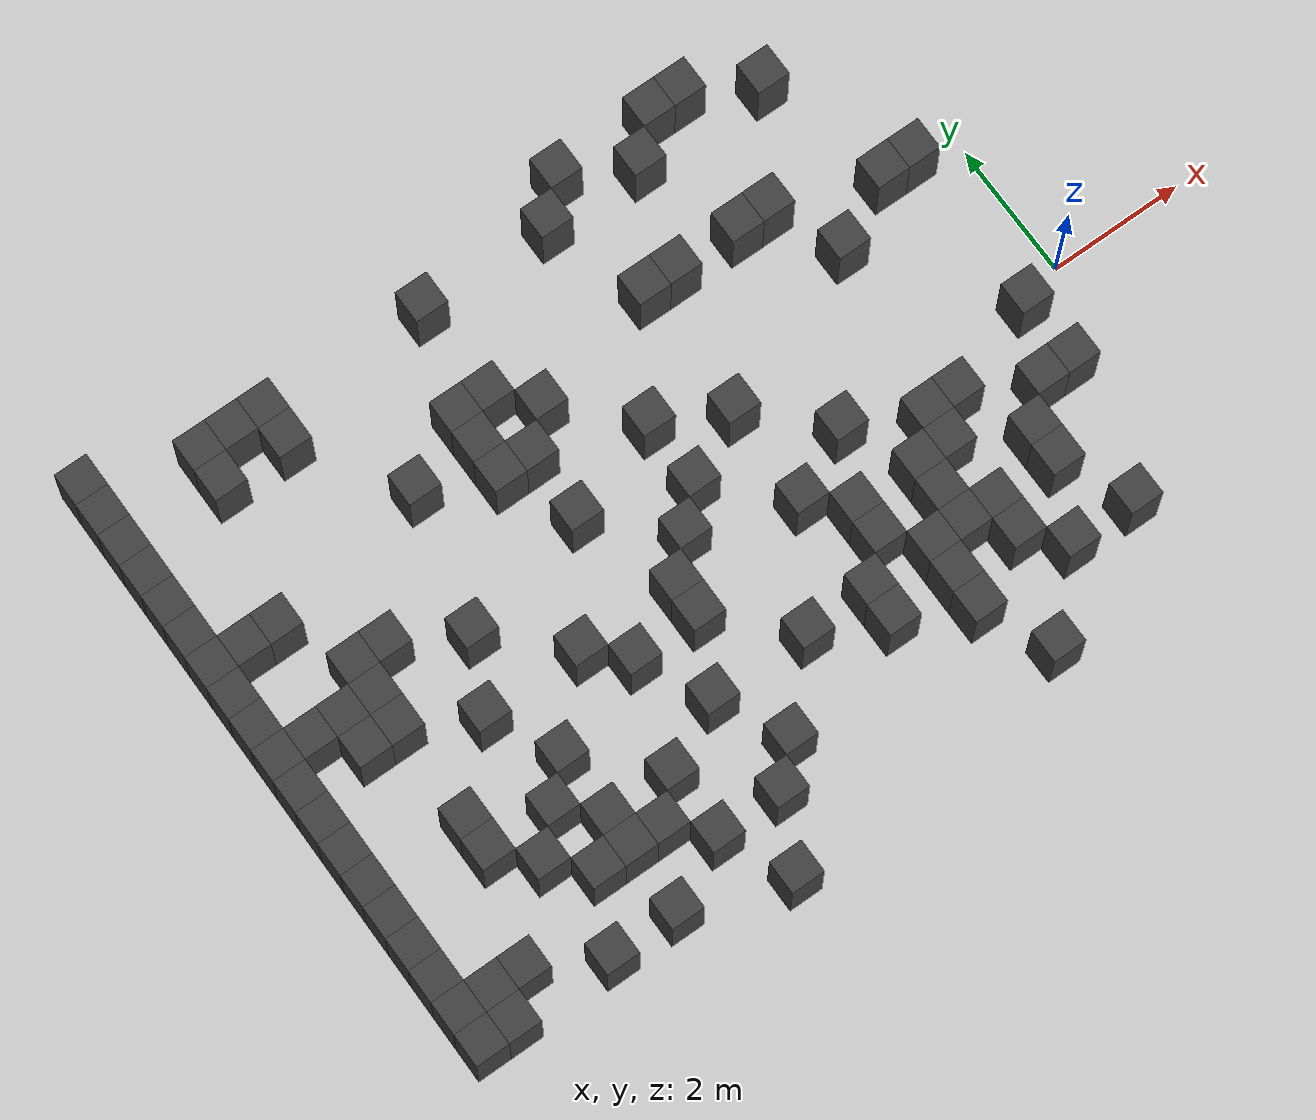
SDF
<sdf version="1.7">
 <world name="map_4226">
  <model name="ground_plane">
   <static>true</static>
   <link name="link">
    <collision name="collision">
     <geometry><plane><normal>0 0 1</normal><size>200 200</size></plane></geometry>
    </collision>
    <visual name="visual">
     <geometry><plane><normal>0 0 1</normal><size>200 200</size></plane></geometry>
     <material><ambient>0.8 0.8 0.8 1</ambient><diffuse>0.8 0.8 0.8 1</diffuse></material>
    </visual>
   </link>
  </model>
  <model name="maze_environment">
   <static>true</static>
   <link name="wall_217">
    <pose>-12.250 4.750 0.500 0 0 0</pose>
    <collision name="col"><geometry><box><size>0.5 0.5 1.0</size></box></geometry></collision>
    <visual name="vis">
     <geometry><box><size>0.5 0.5 1.0</size></box></geometry>
     <material><ambient>0.15 0.15 0.15 1</ambient><diffuse>0.25 0.25 0.25 1</diffuse></material>
    </visual>
   </link>
   <link name="wall_218">
    <pose>-4.750 4.750 0.500 0 0 0</pose>
    <collision name="col"><geometry><box><size>0.5 0.5 1.0</size></box></geometry></collision>
    <visual name="vis">
     <geometry><box><size>0.5 0.5 1.0</size></box></geometry>
     <material><ambient>0.15 0.15 0.15 1</ambient><diffuse>0.25 0.25 0.25 1</diffuse></material>
    </visual>
   </link>
   <link name="wall_219">
    <pose>-3.250 4.750 0.500 0 0 0</pose>
    <collision name="col"><geometry><box><size>0.5 0.5 1.0</size></box></geometry></collision>
    <visual name="vis">
     <geometry><box><size>0.5 0.5 1.0</size></box></geometry>
     <material><ambient>0.15 0.15 0.15 1</ambient><diffuse>0.25 0.25 0.25 1</diffuse></material>
    </visual>
   </link>
   <link name="wall_220">
    <pose>-2.750 4.750 0.500 0 0 0</pose>
    <collision name="col"><geometry><box><size>0.5 0.5 1.0</size></box></geometry></collision>
    <visual name="vis">
     <geometry><box><size>0.5 0.5 1.0</size></box></geometry>
     <material><ambient>0.15 0.15 0.15 1</ambient><diffuse>0.25 0.25 0.25 1</diffuse></material>
    </visual>
   </link>
   <link name="wall_228">
    <pose>-12.250 4.250 0.500 0 0 0</pose>
    <collision name="col"><geometry><box><size>0.5 0.5 1.0</size></box></geometry></collision>
    <visual name="vis">
     <geometry><box><size>0.5 0.5 1.0</size></box></geometry>
     <material><ambient>0.15 0.15 0.15 1</ambient><diffuse>0.25 0.25 0.25 1</diffuse></material>
    </visual>
   </link>
   <link name="wall_229">
    <pose>-10.750 4.250 0.500 0 0 0</pose>
    <collision name="col"><geometry><box><size>0.5 0.5 1.0</size></box></geometry></collision>
    <visual name="vis">
     <geometry><box><size>0.5 0.5 1.0</size></box></geometry>
     <material><ambient>0.15 0.15 0.15 1</ambient><diffuse>0.25 0.25 0.25 1</diffuse></material>
    </visual>
   </link>
   <link name="wall_230">
    <pose>-10.250 4.250 0.500 0 0 0</pose>
    <collision name="col"><geometry><box><size>0.5 0.5 1.0</size></box></geometry></collision>
    <visual name="vis">
     <geometry><box><size>0.5 0.5 1.0</size></box></geometry>
     <material><ambient>0.15 0.15 0.15 1</ambient><diffuse>0.25 0.25 0.25 1</diffuse></material>
    </visual>
   </link>
   <link name="wall_231">
    <pose>-9.750 4.250 0.500 0 0 0</pose>
    <collision name="col"><geometry><box><size>0.5 0.5 1.0</size></box></geometry></collision>
    <visual name="vis">
     <geometry><box><size>0.5 0.5 1.0</size></box></geometry>
     <material><ambient>0.15 0.15 0.15 1</ambient><diffuse>0.25 0.25 0.25 1</diffuse></material>
    </visual>
   </link>
   <link name="wall_232">
    <pose>-7.250 4.250 0.500 0 0 0</pose>
    <collision name="col"><geometry><box><size>0.5 0.5 1.0</size></box></geometry></collision>
    <visual name="vis">
     <geometry><box><size>0.5 0.5 1.0</size></box></geometry>
     <material><ambient>0.15 0.15 0.15 1</ambient><diffuse>0.25 0.25 0.25 1</diffuse></material>
    </visual>
   </link>
   <link name="wall_233">
    <pose>-5.250 4.250 0.500 0 0 0</pose>
    <collision name="col"><geometry><box><size>0.5 0.5 1.0</size></box></geometry></collision>
    <visual name="vis">
     <geometry><box><size>0.5 0.5 1.0</size></box></geometry>
     <material><ambient>0.15 0.15 0.15 1</ambient><diffuse>0.25 0.25 0.25 1</diffuse></material>
    </visual>
   </link>
   <link name="wall_234">
    <pose>-3.750 4.250 0.500 0 0 0</pose>
    <collision name="col"><geometry><box><size>0.5 0.5 1.0</size></box></geometry></collision>
    <visual name="vis">
     <geometry><box><size>0.5 0.5 1.0</size></box></geometry>
     <material><ambient>0.15 0.15 0.15 1</ambient><diffuse>0.25 0.25 0.25 1</diffuse></material>
    </visual>
   </link>
   <link name="wall_235">
    <pose>-1.750 4.250 0.500 0 0 0</pose>
    <collision name="col"><geometry><box><size>0.5 0.5 1.0</size></box></geometry></collision>
    <visual name="vis">
     <geometry><box><size>0.5 0.5 1.0</size></box></geometry>
     <material><ambient>0.15 0.15 0.15 1</ambient><diffuse>0.25 0.25 0.25 1</diffuse></material>
    </visual>
   </link>
   <link name="wall_242">
    <pose>-12.250 3.750 0.500 0 0 0</pose>
    <collision name="col"><geometry><box><size>0.5 0.5 1.0</size></box></geometry></collision>
    <visual name="vis">
     <geometry><box><size>0.5 0.5 1.0</size></box></geometry>
     <material><ambient>0.15 0.15 0.15 1</ambient><diffuse>0.25 0.25 0.25 1</diffuse></material>
    </visual>
   </link>
   <link name="wall_243">
    <pose>-10.750 3.750 0.500 0 0 0</pose>
    <collision name="col"><geometry><box><size>0.5 0.5 1.0</size></box></geometry></collision>
    <visual name="vis">
     <geometry><box><size>0.5 0.5 1.0</size></box></geometry>
     <material><ambient>0.15 0.15 0.15 1</ambient><diffuse>0.25 0.25 0.25 1</diffuse></material>
    </visual>
   </link>
   <link name="wall_244">
    <pose>-9.750 3.750 0.500 0 0 0</pose>
    <collision name="col"><geometry><box><size>0.5 0.5 1.0</size></box></geometry></collision>
    <visual name="vis">
     <geometry><box><size>0.5 0.5 1.0</size></box></geometry>
     <material><ambient>0.15 0.15 0.15 1</ambient><diffuse>0.25 0.25 0.25 1</diffuse></material>
    </visual>
   </link>
   <link name="wall_251">
    <pose>-12.250 3.250 0.500 0 0 0</pose>
    <collision name="col"><geometry><box><size>0.5 0.5 1.0</size></box></geometry></collision>
    <visual name="vis">
     <geometry><box><size>0.5 0.5 1.0</size></box></geometry>
     <material><ambient>0.15 0.15 0.15 1</ambient><diffuse>0.25 0.25 0.25 1</diffuse></material>
    </visual>
   </link>
   <link name="wall_257">
    <pose>-12.250 2.750 0.500 0 0 0</pose>
    <collision name="col"><geometry><box><size>0.5 0.5 1.0</size></box></geometry></collision>
    <visual name="vis">
     <geometry><box><size>0.5 0.5 1.0</size></box></geometry>
     <material><ambient>0.15 0.15 0.15 1</ambient><diffuse>0.25 0.25 0.25 1</diffuse></material>
    </visual>
   </link>
   <link name="wall_258">
    <pose>-7.750 2.750 0.500 0 0 0</pose>
    <collision name="col"><geometry><box><size>0.5 0.5 1.0</size></box></geometry></collision>
    <visual name="vis">
     <geometry><box><size>0.5 0.5 1.0</size></box></geometry>
     <material><ambient>0.15 0.15 0.15 1</ambient><diffuse>0.25 0.25 0.25 1</diffuse></material>
    </visual>
   </link>
   <link name="wall_259">
    <pose>-7.250 2.750 0.500 0 0 0</pose>
    <collision name="col"><geometry><box><size>0.5 0.5 1.0</size></box></geometry></collision>
    <visual name="vis">
     <geometry><box><size>0.5 0.5 1.0</size></box></geometry>
     <material><ambient>0.15 0.15 0.15 1</ambient><diffuse>0.25 0.25 0.25 1</diffuse></material>
    </visual>
   </link>
   <link name="wall_260">
    <pose>-4.750 2.750 0.500 0 0 0</pose>
    <collision name="col"><geometry><box><size>0.5 0.5 1.0</size></box></geometry></collision>
    <visual name="vis">
     <geometry><box><size>0.5 0.5 1.0</size></box></geometry>
     <material><ambient>0.15 0.15 0.15 1</ambient><diffuse>0.25 0.25 0.25 1</diffuse></material>
    </visual>
   </link>
   <link name="wall_261">
    <pose>-4.250 2.750 0.500 0 0 0</pose>
    <collision name="col"><geometry><box><size>0.5 0.5 1.0</size></box></geometry></collision>
    <visual name="vis">
     <geometry><box><size>0.5 0.5 1.0</size></box></geometry>
     <material><ambient>0.15 0.15 0.15 1</ambient><diffuse>0.25 0.25 0.25 1</diffuse></material>
    </visual>
   </link>
   <link name="wall_262">
    <pose>-3.250 2.750 0.500 0 0 0</pose>
    <collision name="col"><geometry><box><size>0.5 0.5 1.0</size></box></geometry></collision>
    <visual name="vis">
     <geometry><box><size>0.5 0.5 1.0</size></box></geometry>
     <material><ambient>0.15 0.15 0.15 1</ambient><diffuse>0.25 0.25 0.25 1</diffuse></material>
    </visual>
   </link>
   <link name="wall_263">
    <pose>-2.750 2.750 0.500 0 0 0</pose>
    <collision name="col"><geometry><box><size>0.5 0.5 1.0</size></box></geometry></collision>
    <visual name="vis">
     <geometry><box><size>0.5 0.5 1.0</size></box></geometry>
     <material><ambient>0.15 0.15 0.15 1</ambient><diffuse>0.25 0.25 0.25 1</diffuse></material>
    </visual>
   </link>
   <link name="wall_269">
    <pose>-12.250 2.250 0.500 0 0 0</pose>
    <collision name="col"><geometry><box><size>0.5 0.5 1.0</size></box></geometry></collision>
    <visual name="vis">
     <geometry><box><size>0.5 0.5 1.0</size></box></geometry>
     <material><ambient>0.15 0.15 0.15 1</ambient><diffuse>0.25 0.25 0.25 1</diffuse></material>
    </visual>
   </link>
   <link name="wall_270">
    <pose>-8.750 2.250 0.500 0 0 0</pose>
    <collision name="col"><geometry><box><size>0.5 0.5 1.0</size></box></geometry></collision>
    <visual name="vis">
     <geometry><box><size>0.5 0.5 1.0</size></box></geometry>
     <material><ambient>0.15 0.15 0.15 1</ambient><diffuse>0.25 0.25 0.25 1</diffuse></material>
    </visual>
   </link>
   <link name="wall_271">
    <pose>-7.750 2.250 0.500 0 0 0</pose>
    <collision name="col"><geometry><box><size>0.5 0.5 1.0</size></box></geometry></collision>
    <visual name="vis">
     <geometry><box><size>0.5 0.5 1.0</size></box></geometry>
     <material><ambient>0.15 0.15 0.15 1</ambient><diffuse>0.25 0.25 0.25 1</diffuse></material>
    </visual>
   </link>
   <link name="wall_272">
    <pose>-6.750 2.250 0.500 0 0 0</pose>
    <collision name="col"><geometry><box><size>0.5 0.5 1.0</size></box></geometry></collision>
    <visual name="vis">
     <geometry><box><size>0.5 0.5 1.0</size></box></geometry>
     <material><ambient>0.15 0.15 0.15 1</ambient><diffuse>0.25 0.25 0.25 1</diffuse></material>
    </visual>
   </link>
   <link name="wall_273">
    <pose>-1.250 2.250 0.500 0 0 0</pose>
    <collision name="col"><geometry><box><size>0.5 0.5 1.0</size></box></geometry></collision>
    <visual name="vis">
     <geometry><box><size>0.5 0.5 1.0</size></box></geometry>
     <material><ambient>0.15 0.15 0.15 1</ambient><diffuse>0.25 0.25 0.25 1</diffuse></material>
    </visual>
   </link>
   <link name="wall_274">
    <pose>-0.750 2.250 0.500 0 0 0</pose>
    <collision name="col"><geometry><box><size>0.5 0.5 1.0</size></box></geometry></collision>
    <visual name="vis">
     <geometry><box><size>0.5 0.5 1.0</size></box></geometry>
     <material><ambient>0.15 0.15 0.15 1</ambient><diffuse>0.25 0.25 0.25 1</diffuse></material>
    </visual>
   </link>
   <link name="wall_282">
    <pose>-12.250 1.750 0.500 0 0 0</pose>
    <collision name="col"><geometry><box><size>0.5 0.5 1.0</size></box></geometry></collision>
    <visual name="vis">
     <geometry><box><size>0.5 0.5 1.0</size></box></geometry>
     <material><ambient>0.15 0.15 0.15 1</ambient><diffuse>0.25 0.25 0.25 1</diffuse></material>
    </visual>
   </link>
   <link name="wall_283">
    <pose>-11.750 1.750 0.500 0 0 0</pose>
    <collision name="col"><geometry><box><size>0.5 0.5 1.0</size></box></geometry></collision>
    <visual name="vis">
     <geometry><box><size>0.5 0.5 1.0</size></box></geometry>
     <material><ambient>0.15 0.15 0.15 1</ambient><diffuse>0.25 0.25 0.25 1</diffuse></material>
    </visual>
   </link>
   <link name="wall_284">
    <pose>-11.250 1.750 0.500 0 0 0</pose>
    <collision name="col"><geometry><box><size>0.5 0.5 1.0</size></box></geometry></collision>
    <visual name="vis">
     <geometry><box><size>0.5 0.5 1.0</size></box></geometry>
     <material><ambient>0.15 0.15 0.15 1</ambient><diffuse>0.25 0.25 0.25 1</diffuse></material>
    </visual>
   </link>
   <link name="wall_285">
    <pose>-7.750 1.750 0.500 0 0 0</pose>
    <collision name="col"><geometry><box><size>0.5 0.5 1.0</size></box></geometry></collision>
    <visual name="vis">
     <geometry><box><size>0.5 0.5 1.0</size></box></geometry>
     <material><ambient>0.15 0.15 0.15 1</ambient><diffuse>0.25 0.25 0.25 1</diffuse></material>
    </visual>
   </link>
   <link name="wall_286">
    <pose>-7.250 1.750 0.500 0 0 0</pose>
    <collision name="col"><geometry><box><size>0.5 0.5 1.0</size></box></geometry></collision>
    <visual name="vis">
     <geometry><box><size>0.5 0.5 1.0</size></box></geometry>
     <material><ambient>0.15 0.15 0.15 1</ambient><diffuse>0.25 0.25 0.25 1</diffuse></material>
    </visual>
   </link>
   <link name="wall_287">
    <pose>-2.250 1.750 0.500 0 0 0</pose>
    <collision name="col"><geometry><box><size>0.5 0.5 1.0</size></box></geometry></collision>
    <visual name="vis">
     <geometry><box><size>0.5 0.5 1.0</size></box></geometry>
     <material><ambient>0.15 0.15 0.15 1</ambient><diffuse>0.25 0.25 0.25 1</diffuse></material>
    </visual>
   </link>
   <link name="wall_295">
    <pose>-12.250 1.250 0.500 0 0 0</pose>
    <collision name="col"><geometry><box><size>0.5 0.5 1.0</size></box></geometry></collision>
    <visual name="vis">
     <geometry><box><size>0.5 0.5 1.0</size></box></geometry>
     <material><ambient>0.15 0.15 0.15 1</ambient><diffuse>0.25 0.25 0.25 1</diffuse></material>
    </visual>
   </link>
   <link name="wall_296">
    <pose>-5.750 1.250 0.500 0 0 0</pose>
    <collision name="col"><geometry><box><size>0.5 0.5 1.0</size></box></geometry></collision>
    <visual name="vis">
     <geometry><box><size>0.5 0.5 1.0</size></box></geometry>
     <material><ambient>0.15 0.15 0.15 1</ambient><diffuse>0.25 0.25 0.25 1</diffuse></material>
    </visual>
   </link>
   <link name="wall_304">
    <pose>-12.250 0.750 0.500 0 0 0</pose>
    <collision name="col"><geometry><box><size>0.5 0.5 1.0</size></box></geometry></collision>
    <visual name="vis">
     <geometry><box><size>0.5 0.5 1.0</size></box></geometry>
     <material><ambient>0.15 0.15 0.15 1</ambient><diffuse>0.25 0.25 0.25 1</diffuse></material>
    </visual>
   </link>
   <link name="wall_305">
    <pose>-10.750 0.750 0.500 0 0 0</pose>
    <collision name="col"><geometry><box><size>0.5 0.5 1.0</size></box></geometry></collision>
    <visual name="vis">
     <geometry><box><size>0.5 0.5 1.0</size></box></geometry>
     <material><ambient>0.15 0.15 0.15 1</ambient><diffuse>0.25 0.25 0.25 1</diffuse></material>
    </visual>
   </link>
   <link name="wall_306">
    <pose>-10.250 0.750 0.500 0 0 0</pose>
    <collision name="col"><geometry><box><size>0.5 0.5 1.0</size></box></geometry></collision>
    <visual name="vis">
     <geometry><box><size>0.5 0.5 1.0</size></box></geometry>
     <material><ambient>0.15 0.15 0.15 1</ambient><diffuse>0.25 0.25 0.25 1</diffuse></material>
    </visual>
   </link>
   <link name="wall_307">
    <pose>-7.250 0.750 0.500 0 0 0</pose>
    <collision name="col"><geometry><box><size>0.5 0.5 1.0</size></box></geometry></collision>
    <visual name="vis">
     <geometry><box><size>0.5 0.5 1.0</size></box></geometry>
     <material><ambient>0.15 0.15 0.15 1</ambient><diffuse>0.25 0.25 0.25 1</diffuse></material>
    </visual>
   </link>
   <link name="wall_308">
    <pose>-4.750 0.750 0.500 0 0 0</pose>
    <collision name="col"><geometry><box><size>0.5 0.5 1.0</size></box></geometry></collision>
    <visual name="vis">
     <geometry><box><size>0.5 0.5 1.0</size></box></geometry>
     <material><ambient>0.15 0.15 0.15 1</ambient><diffuse>0.25 0.25 0.25 1</diffuse></material>
    </visual>
   </link>
   <link name="wall_316">
    <pose>-12.250 0.250 0.500 0 0 0</pose>
    <collision name="col"><geometry><box><size>0.5 0.5 1.0</size></box></geometry></collision>
    <visual name="vis">
     <geometry><box><size>0.5 0.5 1.0</size></box></geometry>
     <material><ambient>0.15 0.15 0.15 1</ambient><diffuse>0.25 0.25 0.25 1</diffuse></material>
    </visual>
   </link>
   <link name="wall_317">
    <pose>-11.750 0.250 0.500 0 0 0</pose>
    <collision name="col"><geometry><box><size>0.5 0.5 1.0</size></box></geometry></collision>
    <visual name="vis">
     <geometry><box><size>0.5 0.5 1.0</size></box></geometry>
     <material><ambient>0.15 0.15 0.15 1</ambient><diffuse>0.25 0.25 0.25 1</diffuse></material>
    </visual>
   </link>
   <link name="wall_318">
    <pose>-11.250 0.250 0.500 0 0 0</pose>
    <collision name="col"><geometry><box><size>0.5 0.5 1.0</size></box></geometry></collision>
    <visual name="vis">
     <geometry><box><size>0.5 0.5 1.0</size></box></geometry>
     <material><ambient>0.15 0.15 0.15 1</ambient><diffuse>0.25 0.25 0.25 1</diffuse></material>
    </visual>
   </link>
   <link name="wall_319">
    <pose>-10.750 0.250 0.500 0 0 0</pose>
    <collision name="col"><geometry><box><size>0.5 0.5 1.0</size></box></geometry></collision>
    <visual name="vis">
     <geometry><box><size>0.5 0.5 1.0</size></box></geometry>
     <material><ambient>0.15 0.15 0.15 1</ambient><diffuse>0.25 0.25 0.25 1</diffuse></material>
    </visual>
   </link>
   <link name="wall_320">
    <pose>-9.250 0.250 0.500 0 0 0</pose>
    <collision name="col"><geometry><box><size>0.5 0.5 1.0</size></box></geometry></collision>
    <visual name="vis">
     <geometry><box><size>0.5 0.5 1.0</size></box></geometry>
     <material><ambient>0.15 0.15 0.15 1</ambient><diffuse>0.25 0.25 0.25 1</diffuse></material>
    </visual>
   </link>
   <link name="wall_321">
    <pose>-5.750 0.250 0.500 0 0 0</pose>
    <collision name="col"><geometry><box><size>0.5 0.5 1.0</size></box></geometry></collision>
    <visual name="vis">
     <geometry><box><size>0.5 0.5 1.0</size></box></geometry>
     <material><ambient>0.15 0.15 0.15 1</ambient><diffuse>0.25 0.25 0.25 1</diffuse></material>
    </visual>
   </link>
   <link name="wall_328">
    <pose>-12.250 -0.250 0.500 0 0 0</pose>
    <collision name="col"><geometry><box><size>0.5 0.5 1.0</size></box></geometry></collision>
    <visual name="vis">
     <geometry><box><size>0.5 0.5 1.0</size></box></geometry>
     <material><ambient>0.15 0.15 0.15 1</ambient><diffuse>0.25 0.25 0.25 1</diffuse></material>
    </visual>
   </link>
   <link name="wall_329">
    <pose>-11.250 -0.250 0.500 0 0 0</pose>
    <collision name="col"><geometry><box><size>0.5 0.5 1.0</size></box></geometry></collision>
    <visual name="vis">
     <geometry><box><size>0.5 0.5 1.0</size></box></geometry>
     <material><ambient>0.15 0.15 0.15 1</ambient><diffuse>0.25 0.25 0.25 1</diffuse></material>
    </visual>
   </link>
   <link name="wall_330">
    <pose>-10.750 -0.250 0.500 0 0 0</pose>
    <collision name="col"><geometry><box><size>0.5 0.5 1.0</size></box></geometry></collision>
    <visual name="vis">
     <geometry><box><size>0.5 0.5 1.0</size></box></geometry>
     <material><ambient>0.15 0.15 0.15 1</ambient><diffuse>0.25 0.25 0.25 1</diffuse></material>
    </visual>
   </link>
   <link name="wall_331">
    <pose>-6.250 -0.250 0.500 0 0 0</pose>
    <collision name="col"><geometry><box><size>0.5 0.5 1.0</size></box></geometry></collision>
    <visual name="vis">
     <geometry><box><size>0.5 0.5 1.0</size></box></geometry>
     <material><ambient>0.15 0.15 0.15 1</ambient><diffuse>0.25 0.25 0.25 1</diffuse></material>
    </visual>
   </link>
   <link name="wall_332">
    <pose>-3.750 -0.250 0.500 0 0 0</pose>
    <collision name="col"><geometry><box><size>0.5 0.5 1.0</size></box></geometry></collision>
    <visual name="vis">
     <geometry><box><size>0.5 0.5 1.0</size></box></geometry>
     <material><ambient>0.15 0.15 0.15 1</ambient><diffuse>0.25 0.25 0.25 1</diffuse></material>
    </visual>
   </link>
   <link name="wall_333">
    <pose>-0.750 -0.250 0.500 0 0 0</pose>
    <collision name="col"><geometry><box><size>0.5 0.5 1.0</size></box></geometry></collision>
    <visual name="vis">
     <geometry><box><size>0.5 0.5 1.0</size></box></geometry>
     <material><ambient>0.15 0.15 0.15 1</ambient><diffuse>0.25 0.25 0.25 1</diffuse></material>
    </visual>
   </link>
   <link name="wall_339">
    <pose>-12.250 -0.750 0.500 0 0 0</pose>
    <collision name="col"><geometry><box><size>0.5 0.5 1.0</size></box></geometry></collision>
    <visual name="vis">
     <geometry><box><size>0.5 0.5 1.0</size></box></geometry>
     <material><ambient>0.15 0.15 0.15 1</ambient><diffuse>0.25 0.25 0.25 1</diffuse></material>
    </visual>
   </link>
   <link name="wall_340">
    <pose>-9.750 -0.750 0.500 0 0 0</pose>
    <collision name="col"><geometry><box><size>0.5 0.5 1.0</size></box></geometry></collision>
    <visual name="vis">
     <geometry><box><size>0.5 0.5 1.0</size></box></geometry>
     <material><ambient>0.15 0.15 0.15 1</ambient><diffuse>0.25 0.25 0.25 1</diffuse></material>
    </visual>
   </link>
   <link name="wall_341">
    <pose>-8.250 -0.750 0.500 0 0 0</pose>
    <collision name="col"><geometry><box><size>0.5 0.5 1.0</size></box></geometry></collision>
    <visual name="vis">
     <geometry><box><size>0.5 0.5 1.0</size></box></geometry>
     <material><ambient>0.15 0.15 0.15 1</ambient><diffuse>0.25 0.25 0.25 1</diffuse></material>
    </visual>
   </link>
   <link name="wall_342">
    <pose>-6.750 -0.750 0.500 0 0 0</pose>
    <collision name="col"><geometry><box><size>0.5 0.5 1.0</size></box></geometry></collision>
    <visual name="vis">
     <geometry><box><size>0.5 0.5 1.0</size></box></geometry>
     <material><ambient>0.15 0.15 0.15 1</ambient><diffuse>0.25 0.25 0.25 1</diffuse></material>
    </visual>
   </link>
   <link name="wall_343">
    <pose>-4.750 -0.750 0.500 0 0 0</pose>
    <collision name="col"><geometry><box><size>0.5 0.5 1.0</size></box></geometry></collision>
    <visual name="vis">
     <geometry><box><size>0.5 0.5 1.0</size></box></geometry>
     <material><ambient>0.15 0.15 0.15 1</ambient><diffuse>0.25 0.25 0.25 1</diffuse></material>
    </visual>
   </link>
   <link name="wall_344">
    <pose>-2.750 -0.750 0.500 0 0 0</pose>
    <collision name="col"><geometry><box><size>0.5 0.5 1.0</size></box></geometry></collision>
    <visual name="vis">
     <geometry><box><size>0.5 0.5 1.0</size></box></geometry>
     <material><ambient>0.15 0.15 0.15 1</ambient><diffuse>0.25 0.25 0.25 1</diffuse></material>
    </visual>
   </link>
   <link name="wall_345">
    <pose>-2.250 -0.750 0.500 0 0 0</pose>
    <collision name="col"><geometry><box><size>0.5 0.5 1.0</size></box></geometry></collision>
    <visual name="vis">
     <geometry><box><size>0.5 0.5 1.0</size></box></geometry>
     <material><ambient>0.15 0.15 0.15 1</ambient><diffuse>0.25 0.25 0.25 1</diffuse></material>
    </visual>
   </link>
   <link name="wall_352">
    <pose>-12.250 -1.250 0.500 0 0 0</pose>
    <collision name="col"><geometry><box><size>0.5 0.5 1.0</size></box></geometry></collision>
    <visual name="vis">
     <geometry><box><size>0.5 0.5 1.0</size></box></geometry>
     <material><ambient>0.15 0.15 0.15 1</ambient><diffuse>0.25 0.25 0.25 1</diffuse></material>
    </visual>
   </link>
   <link name="wall_353">
    <pose>-7.750 -1.250 0.500 0 0 0</pose>
    <collision name="col"><geometry><box><size>0.5 0.5 1.0</size></box></geometry></collision>
    <visual name="vis">
     <geometry><box><size>0.5 0.5 1.0</size></box></geometry>
     <material><ambient>0.15 0.15 0.15 1</ambient><diffuse>0.25 0.25 0.25 1</diffuse></material>
    </visual>
   </link>
   <link name="wall_354">
    <pose>-6.750 -1.250 0.500 0 0 0</pose>
    <collision name="col"><geometry><box><size>0.5 0.5 1.0</size></box></geometry></collision>
    <visual name="vis">
     <geometry><box><size>0.5 0.5 1.0</size></box></geometry>
     <material><ambient>0.15 0.15 0.15 1</ambient><diffuse>0.25 0.25 0.25 1</diffuse></material>
    </visual>
   </link>
   <link name="wall_355">
    <pose>-4.250 -1.250 0.500 0 0 0</pose>
    <collision name="col"><geometry><box><size>0.5 0.5 1.0</size></box></geometry></collision>
    <visual name="vis">
     <geometry><box><size>0.5 0.5 1.0</size></box></geometry>
     <material><ambient>0.15 0.15 0.15 1</ambient><diffuse>0.25 0.25 0.25 1</diffuse></material>
    </visual>
   </link>
   <link name="wall_356">
    <pose>-3.250 -1.250 0.500 0 0 0</pose>
    <collision name="col"><geometry><box><size>0.5 0.5 1.0</size></box></geometry></collision>
    <visual name="vis">
     <geometry><box><size>0.5 0.5 1.0</size></box></geometry>
     <material><ambient>0.15 0.15 0.15 1</ambient><diffuse>0.25 0.25 0.25 1</diffuse></material>
    </visual>
   </link>
   <link name="wall_357">
    <pose>-2.750 -1.250 0.500 0 0 0</pose>
    <collision name="col"><geometry><box><size>0.5 0.5 1.0</size></box></geometry></collision>
    <visual name="vis">
     <geometry><box><size>0.5 0.5 1.0</size></box></geometry>
     <material><ambient>0.15 0.15 0.15 1</ambient><diffuse>0.25 0.25 0.25 1</diffuse></material>
    </visual>
   </link>
   <link name="wall_358">
    <pose>-1.250 -1.250 0.500 0 0 0</pose>
    <collision name="col"><geometry><box><size>0.5 0.5 1.0</size></box></geometry></collision>
    <visual name="vis">
     <geometry><box><size>0.5 0.5 1.0</size></box></geometry>
     <material><ambient>0.15 0.15 0.15 1</ambient><diffuse>0.25 0.25 0.25 1</diffuse></material>
    </visual>
   </link>
   <link name="wall_359">
    <pose>-0.750 -1.250 0.500 0 0 0</pose>
    <collision name="col"><geometry><box><size>0.5 0.5 1.0</size></box></geometry></collision>
    <visual name="vis">
     <geometry><box><size>0.5 0.5 1.0</size></box></geometry>
     <material><ambient>0.15 0.15 0.15 1</ambient><diffuse>0.25 0.25 0.25 1</diffuse></material>
    </visual>
   </link>
   <link name="wall_363">
    <pose>-12.250 -1.750 0.500 0 0 0</pose>
    <collision name="col"><geometry><box><size>0.5 0.5 1.0</size></box></geometry></collision>
    <visual name="vis">
     <geometry><box><size>0.5 0.5 1.0</size></box></geometry>
     <material><ambient>0.15 0.15 0.15 1</ambient><diffuse>0.25 0.25 0.25 1</diffuse></material>
    </visual>
   </link>
   <link name="wall_364">
    <pose>-10.750 -1.750 0.500 0 0 0</pose>
    <collision name="col"><geometry><box><size>0.5 0.5 1.0</size></box></geometry></collision>
    <visual name="vis">
     <geometry><box><size>0.5 0.5 1.0</size></box></geometry>
     <material><ambient>0.15 0.15 0.15 1</ambient><diffuse>0.25 0.25 0.25 1</diffuse></material>
    </visual>
   </link>
   <link name="wall_365">
    <pose>-9.250 -1.750 0.500 0 0 0</pose>
    <collision name="col"><geometry><box><size>0.5 0.5 1.0</size></box></geometry></collision>
    <visual name="vis">
     <geometry><box><size>0.5 0.5 1.0</size></box></geometry>
     <material><ambient>0.15 0.15 0.15 1</ambient><diffuse>0.25 0.25 0.25 1</diffuse></material>
    </visual>
   </link>
   <link name="wall_366">
    <pose>-4.250 -1.750 0.500 0 0 0</pose>
    <collision name="col"><geometry><box><size>0.5 0.5 1.0</size></box></geometry></collision>
    <visual name="vis">
     <geometry><box><size>0.5 0.5 1.0</size></box></geometry>
     <material><ambient>0.15 0.15 0.15 1</ambient><diffuse>0.25 0.25 0.25 1</diffuse></material>
    </visual>
   </link>
   <link name="wall_367">
    <pose>-3.250 -1.750 0.500 0 0 0</pose>
    <collision name="col"><geometry><box><size>0.5 0.5 1.0</size></box></geometry></collision>
    <visual name="vis">
     <geometry><box><size>0.5 0.5 1.0</size></box></geometry>
     <material><ambient>0.15 0.15 0.15 1</ambient><diffuse>0.25 0.25 0.25 1</diffuse></material>
    </visual>
   </link>
   <link name="wall_368">
    <pose>-1.750 -1.750 0.500 0 0 0</pose>
    <collision name="col"><geometry><box><size>0.5 0.5 1.0</size></box></geometry></collision>
    <visual name="vis">
     <geometry><box><size>0.5 0.5 1.0</size></box></geometry>
     <material><ambient>0.15 0.15 0.15 1</ambient><diffuse>0.25 0.25 0.25 1</diffuse></material>
    </visual>
   </link>
   <link name="wall_376">
    <pose>-12.250 -2.250 0.500 0 0 0</pose>
    <collision name="col"><geometry><box><size>0.5 0.5 1.0</size></box></geometry></collision>
    <visual name="vis">
     <geometry><box><size>0.5 0.5 1.0</size></box></geometry>
     <material><ambient>0.15 0.15 0.15 1</ambient><diffuse>0.25 0.25 0.25 1</diffuse></material>
    </visual>
   </link>
   <link name="wall_377">
    <pose>-10.750 -2.250 0.500 0 0 0</pose>
    <collision name="col"><geometry><box><size>0.5 0.5 1.0</size></box></geometry></collision>
    <visual name="vis">
     <geometry><box><size>0.5 0.5 1.0</size></box></geometry>
     <material><ambient>0.15 0.15 0.15 1</ambient><diffuse>0.25 0.25 0.25 1</diffuse></material>
    </visual>
   </link>
   <link name="wall_378">
    <pose>-9.750 -2.250 0.500 0 0 0</pose>
    <collision name="col"><geometry><box><size>0.5 0.5 1.0</size></box></geometry></collision>
    <visual name="vis">
     <geometry><box><size>0.5 0.5 1.0</size></box></geometry>
     <material><ambient>0.15 0.15 0.15 1</ambient><diffuse>0.25 0.25 0.25 1</diffuse></material>
    </visual>
   </link>
   <link name="wall_379">
    <pose>-7.250 -2.250 0.500 0 0 0</pose>
    <collision name="col"><geometry><box><size>0.5 0.5 1.0</size></box></geometry></collision>
    <visual name="vis">
     <geometry><box><size>0.5 0.5 1.0</size></box></geometry>
     <material><ambient>0.15 0.15 0.15 1</ambient><diffuse>0.25 0.25 0.25 1</diffuse></material>
    </visual>
   </link>
   <link name="wall_380">
    <pose>-5.750 -2.250 0.500 0 0 0</pose>
    <collision name="col"><geometry><box><size>0.5 0.5 1.0</size></box></geometry></collision>
    <visual name="vis">
     <geometry><box><size>0.5 0.5 1.0</size></box></geometry>
     <material><ambient>0.15 0.15 0.15 1</ambient><diffuse>0.25 0.25 0.25 1</diffuse></material>
    </visual>
   </link>
   <link name="wall_381">
    <pose>-4.750 -2.250 0.500 0 0 0</pose>
    <collision name="col"><geometry><box><size>0.5 0.5 1.0</size></box></geometry></collision>
    <visual name="vis">
     <geometry><box><size>0.5 0.5 1.0</size></box></geometry>
     <material><ambient>0.15 0.15 0.15 1</ambient><diffuse>0.25 0.25 0.25 1</diffuse></material>
    </visual>
   </link>
   <link name="wall_382">
    <pose>-3.750 -2.250 0.500 0 0 0</pose>
    <collision name="col"><geometry><box><size>0.5 0.5 1.0</size></box></geometry></collision>
    <visual name="vis">
     <geometry><box><size>0.5 0.5 1.0</size></box></geometry>
     <material><ambient>0.15 0.15 0.15 1</ambient><diffuse>0.25 0.25 0.25 1</diffuse></material>
    </visual>
   </link>
   <link name="wall_383">
    <pose>-3.250 -2.250 0.500 0 0 0</pose>
    <collision name="col"><geometry><box><size>0.5 0.5 1.0</size></box></geometry></collision>
    <visual name="vis">
     <geometry><box><size>0.5 0.5 1.0</size></box></geometry>
     <material><ambient>0.15 0.15 0.15 1</ambient><diffuse>0.25 0.25 0.25 1</diffuse></material>
    </visual>
   </link>
   <link name="wall_384">
    <pose>-2.750 -2.250 0.500 0 0 0</pose>
    <collision name="col"><geometry><box><size>0.5 0.5 1.0</size></box></geometry></collision>
    <visual name="vis">
     <geometry><box><size>0.5 0.5 1.0</size></box></geometry>
     <material><ambient>0.15 0.15 0.15 1</ambient><diffuse>0.25 0.25 0.25 1</diffuse></material>
    </visual>
   </link>
   <link name="wall_385">
    <pose>-1.750 -2.250 0.500 0 0 0</pose>
    <collision name="col"><geometry><box><size>0.5 0.5 1.0</size></box></geometry></collision>
    <visual name="vis">
     <geometry><box><size>0.5 0.5 1.0</size></box></geometry>
     <material><ambient>0.15 0.15 0.15 1</ambient><diffuse>0.25 0.25 0.25 1</diffuse></material>
    </visual>
   </link>
   <link name="wall_392">
    <pose>-12.250 -2.750 0.500 0 0 0</pose>
    <collision name="col"><geometry><box><size>0.5 0.5 1.0</size></box></geometry></collision>
    <visual name="vis">
     <geometry><box><size>0.5 0.5 1.0</size></box></geometry>
     <material><ambient>0.15 0.15 0.15 1</ambient><diffuse>0.25 0.25 0.25 1</diffuse></material>
    </visual>
   </link>
   <link name="wall_393">
    <pose>-10.250 -2.750 0.500 0 0 0</pose>
    <collision name="col"><geometry><box><size>0.5 0.5 1.0</size></box></geometry></collision>
    <visual name="vis">
     <geometry><box><size>0.5 0.5 1.0</size></box></geometry>
     <material><ambient>0.15 0.15 0.15 1</ambient><diffuse>0.25 0.25 0.25 1</diffuse></material>
    </visual>
   </link>
   <link name="wall_394">
    <pose>-9.250 -2.750 0.500 0 0 0</pose>
    <collision name="col"><geometry><box><size>0.5 0.5 1.0</size></box></geometry></collision>
    <visual name="vis">
     <geometry><box><size>0.5 0.5 1.0</size></box></geometry>
     <material><ambient>0.15 0.15 0.15 1</ambient><diffuse>0.25 0.25 0.25 1</diffuse></material>
    </visual>
   </link>
   <link name="wall_395">
    <pose>-8.250 -2.750 0.500 0 0 0</pose>
    <collision name="col"><geometry><box><size>0.5 0.5 1.0</size></box></geometry></collision>
    <visual name="vis">
     <geometry><box><size>0.5 0.5 1.0</size></box></geometry>
     <material><ambient>0.15 0.15 0.15 1</ambient><diffuse>0.25 0.25 0.25 1</diffuse></material>
    </visual>
   </link>
   <link name="wall_396">
    <pose>-4.750 -2.750 0.500 0 0 0</pose>
    <collision name="col"><geometry><box><size>0.5 0.5 1.0</size></box></geometry></collision>
    <visual name="vis">
     <geometry><box><size>0.5 0.5 1.0</size></box></geometry>
     <material><ambient>0.15 0.15 0.15 1</ambient><diffuse>0.25 0.25 0.25 1</diffuse></material>
    </visual>
   </link>
   <link name="wall_397">
    <pose>-3.750 -2.750 0.500 0 0 0</pose>
    <collision name="col"><geometry><box><size>0.5 0.5 1.0</size></box></geometry></collision>
    <visual name="vis">
     <geometry><box><size>0.5 0.5 1.0</size></box></geometry>
     <material><ambient>0.15 0.15 0.15 1</ambient><diffuse>0.25 0.25 0.25 1</diffuse></material>
    </visual>
   </link>
   <link name="wall_398">
    <pose>-2.750 -2.750 0.500 0 0 0</pose>
    <collision name="col"><geometry><box><size>0.5 0.5 1.0</size></box></geometry></collision>
    <visual name="vis">
     <geometry><box><size>0.5 0.5 1.0</size></box></geometry>
     <material><ambient>0.15 0.15 0.15 1</ambient><diffuse>0.25 0.25 0.25 1</diffuse></material>
    </visual>
   </link>
   <link name="wall_403">
    <pose>-12.250 -3.250 0.500 0 0 0</pose>
    <collision name="col"><geometry><box><size>0.5 0.5 1.0</size></box></geometry></collision>
    <visual name="vis">
     <geometry><box><size>0.5 0.5 1.0</size></box></geometry>
     <material><ambient>0.15 0.15 0.15 1</ambient><diffuse>0.25 0.25 0.25 1</diffuse></material>
    </visual>
   </link>
   <link name="wall_404">
    <pose>-9.750 -3.250 0.500 0 0 0</pose>
    <collision name="col"><geometry><box><size>0.5 0.5 1.0</size></box></geometry></collision>
    <visual name="vis">
     <geometry><box><size>0.5 0.5 1.0</size></box></geometry>
     <material><ambient>0.15 0.15 0.15 1</ambient><diffuse>0.25 0.25 0.25 1</diffuse></material>
    </visual>
   </link>
   <link name="wall_405">
    <pose>-9.250 -3.250 0.500 0 0 0</pose>
    <collision name="col"><geometry><box><size>0.5 0.5 1.0</size></box></geometry></collision>
    <visual name="vis">
     <geometry><box><size>0.5 0.5 1.0</size></box></geometry>
     <material><ambient>0.15 0.15 0.15 1</ambient><diffuse>0.25 0.25 0.25 1</diffuse></material>
    </visual>
   </link>
   <link name="wall_406">
    <pose>-8.750 -3.250 0.500 0 0 0</pose>
    <collision name="col"><geometry><box><size>0.5 0.5 1.0</size></box></geometry></collision>
    <visual name="vis">
     <geometry><box><size>0.5 0.5 1.0</size></box></geometry>
     <material><ambient>0.15 0.15 0.15 1</ambient><diffuse>0.25 0.25 0.25 1</diffuse></material>
    </visual>
   </link>
   <link name="wall_407">
    <pose>-6.750 -3.250 0.500 0 0 0</pose>
    <collision name="col"><geometry><box><size>0.5 0.5 1.0</size></box></geometry></collision>
    <visual name="vis">
     <geometry><box><size>0.5 0.5 1.0</size></box></geometry>
     <material><ambient>0.15 0.15 0.15 1</ambient><diffuse>0.25 0.25 0.25 1</diffuse></material>
    </visual>
   </link>
   <link name="wall_408">
    <pose>-3.750 -3.250 0.500 0 0 0</pose>
    <collision name="col"><geometry><box><size>0.5 0.5 1.0</size></box></geometry></collision>
    <visual name="vis">
     <geometry><box><size>0.5 0.5 1.0</size></box></geometry>
     <material><ambient>0.15 0.15 0.15 1</ambient><diffuse>0.25 0.25 0.25 1</diffuse></material>
    </visual>
   </link>
   <link name="wall_409">
    <pose>-2.250 -3.250 0.500 0 0 0</pose>
    <collision name="col"><geometry><box><size>0.5 0.5 1.0</size></box></geometry></collision>
    <visual name="vis">
     <geometry><box><size>0.5 0.5 1.0</size></box></geometry>
     <material><ambient>0.15 0.15 0.15 1</ambient><diffuse>0.25 0.25 0.25 1</diffuse></material>
    </visual>
   </link>
   <link name="wall_410">
    <pose>-1.250 -3.250 0.500 0 0 0</pose>
    <collision name="col"><geometry><box><size>0.5 0.5 1.0</size></box></geometry></collision>
    <visual name="vis">
     <geometry><box><size>0.5 0.5 1.0</size></box></geometry>
     <material><ambient>0.15 0.15 0.15 1</ambient><diffuse>0.25 0.25 0.25 1</diffuse></material>
    </visual>
   </link>
   <link name="wall_416">
    <pose>-12.250 -3.750 0.500 0 0 0</pose>
    <collision name="col"><geometry><box><size>0.5 0.5 1.0</size></box></geometry></collision>
    <visual name="vis">
     <geometry><box><size>0.5 0.5 1.0</size></box></geometry>
     <material><ambient>0.15 0.15 0.15 1</ambient><diffuse>0.25 0.25 0.25 1</diffuse></material>
    </visual>
   </link>
   <link name="wall_417">
    <pose>-11.750 -3.750 0.500 0 0 0</pose>
    <collision name="col"><geometry><box><size>0.5 0.5 1.0</size></box></geometry></collision>
    <visual name="vis">
     <geometry><box><size>0.5 0.5 1.0</size></box></geometry>
     <material><ambient>0.15 0.15 0.15 1</ambient><diffuse>0.25 0.25 0.25 1</diffuse></material>
    </visual>
   </link>
   <link name="wall_418">
    <pose>-11.250 -3.750 0.500 0 0 0</pose>
    <collision name="col"><geometry><box><size>0.5 0.5 1.0</size></box></geometry></collision>
    <visual name="vis">
     <geometry><box><size>0.5 0.5 1.0</size></box></geometry>
     <material><ambient>0.15 0.15 0.15 1</ambient><diffuse>0.25 0.25 0.25 1</diffuse></material>
    </visual>
   </link>
   <link name="wall_419">
    <pose>-8.250 -3.750 0.500 0 0 0</pose>
    <collision name="col"><geometry><box><size>0.5 0.5 1.0</size></box></geometry></collision>
    <visual name="vis">
     <geometry><box><size>0.5 0.5 1.0</size></box></geometry>
     <material><ambient>0.15 0.15 0.15 1</ambient><diffuse>0.25 0.25 0.25 1</diffuse></material>
    </visual>
   </link>
   <link name="wall_420">
    <pose>-7.250 -3.750 0.500 0 0 0</pose>
    <collision name="col"><geometry><box><size>0.5 0.5 1.0</size></box></geometry></collision>
    <visual name="vis">
     <geometry><box><size>0.5 0.5 1.0</size></box></geometry>
     <material><ambient>0.15 0.15 0.15 1</ambient><diffuse>0.25 0.25 0.25 1</diffuse></material>
    </visual>
   </link>
   <link name="wall_427">
    <pose>-12.250 -4.250 0.500 0 0 0</pose>
    <collision name="col"><geometry><box><size>0.5 0.5 1.0</size></box></geometry></collision>
    <visual name="vis">
     <geometry><box><size>0.5 0.5 1.0</size></box></geometry>
     <material><ambient>0.15 0.15 0.15 1</ambient><diffuse>0.25 0.25 0.25 1</diffuse></material>
    </visual>
   </link>
   <link name="wall_428">
    <pose>-11.750 -4.250 0.500 0 0 0</pose>
    <collision name="col"><geometry><box><size>0.5 0.5 1.0</size></box></geometry></collision>
    <visual name="vis">
     <geometry><box><size>0.5 0.5 1.0</size></box></geometry>
     <material><ambient>0.15 0.15 0.15 1</ambient><diffuse>0.25 0.25 0.25 1</diffuse></material>
    </visual>
   </link>
   <link name="wall_429">
    <pose>-10.250 -4.250 0.500 0 0 0</pose>
    <collision name="col"><geometry><box><size>0.5 0.5 1.0</size></box></geometry></collision>
    <visual name="vis">
     <geometry><box><size>0.5 0.5 1.0</size></box></geometry>
     <material><ambient>0.15 0.15 0.15 1</ambient><diffuse>0.25 0.25 0.25 1</diffuse></material>
    </visual>
   </link>
   <link name="wall_430">
    <pose>-9.250 -4.250 0.500 0 0 0</pose>
    <collision name="col"><geometry><box><size>0.5 0.5 1.0</size></box></geometry></collision>
    <visual name="vis">
     <geometry><box><size>0.5 0.5 1.0</size></box></geometry>
     <material><ambient>0.15 0.15 0.15 1</ambient><diffuse>0.25 0.25 0.25 1</diffuse></material>
    </visual>
   </link>
   <link name="wall_431">
    <pose>-3.250 -4.250 0.500 0 0 0</pose>
    <collision name="col"><geometry><box><size>0.5 0.5 1.0</size></box></geometry></collision>
    <visual name="vis">
     <geometry><box><size>0.5 0.5 1.0</size></box></geometry>
     <material><ambient>0.15 0.15 0.15 1</ambient><diffuse>0.25 0.25 0.25 1</diffuse></material>
    </visual>
   </link>
   <link name="wall_439">
    <pose>-7.750 -4.750 0.500 0 0 0</pose>
    <collision name="col"><geometry><box><size>0.5 0.5 1.0</size></box></geometry></collision>
    <visual name="vis">
     <geometry><box><size>0.5 0.5 1.0</size></box></geometry>
     <material><ambient>0.15 0.15 0.15 1</ambient><diffuse>0.25 0.25 0.25 1</diffuse></material>
    </visual>
   </link>
  </model>
 </world>
</sdf>
